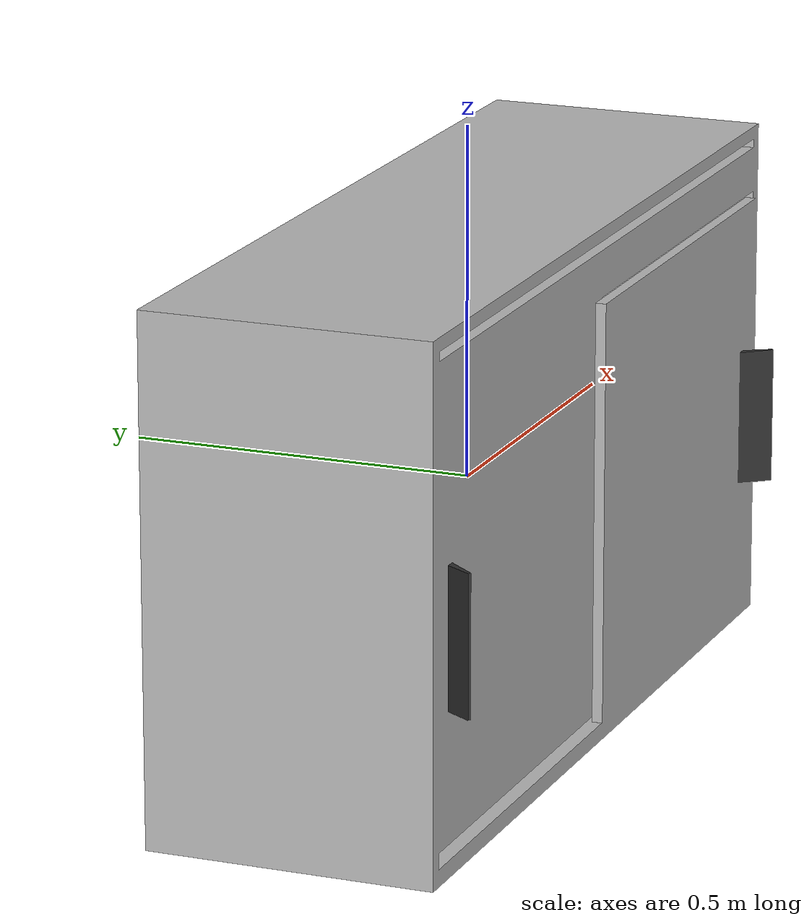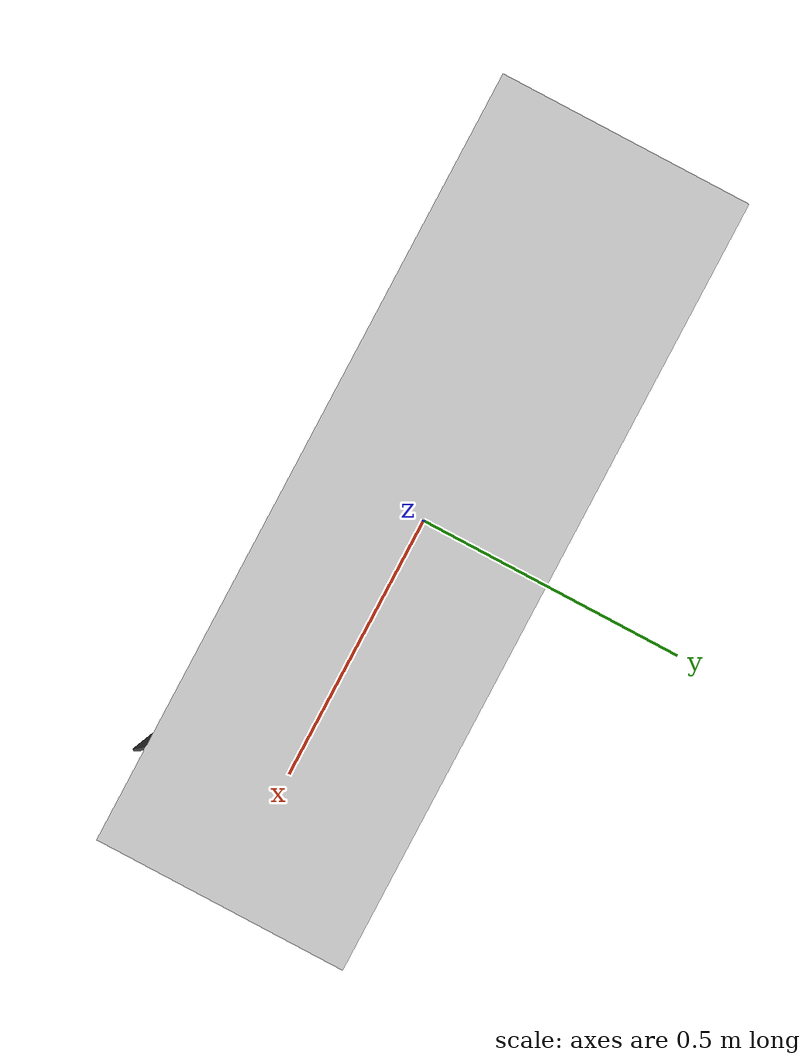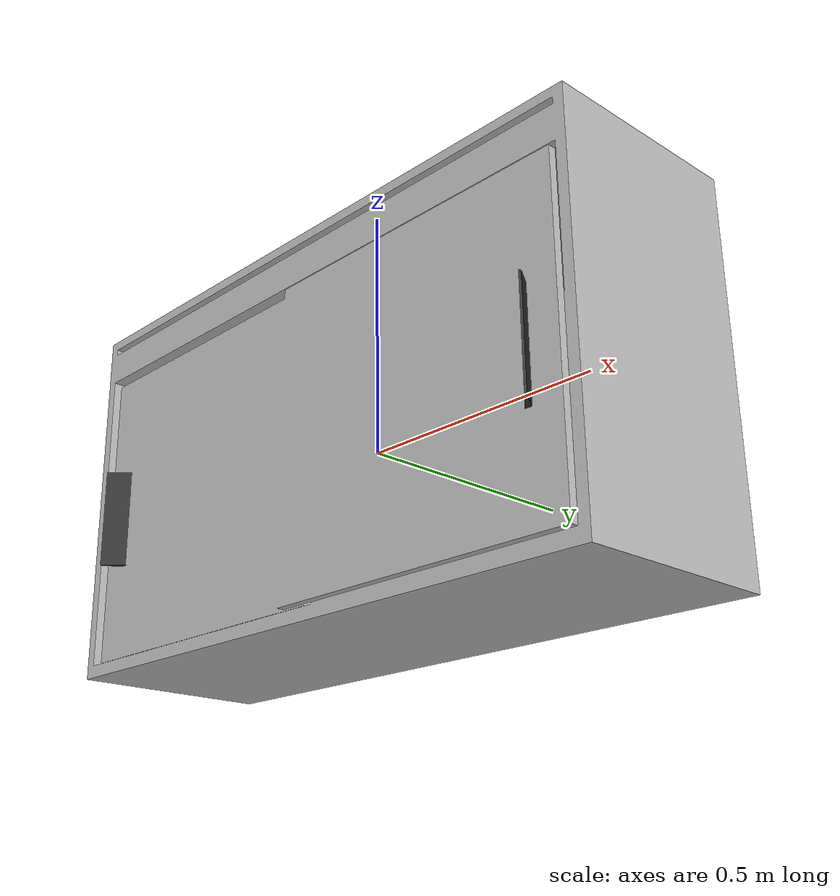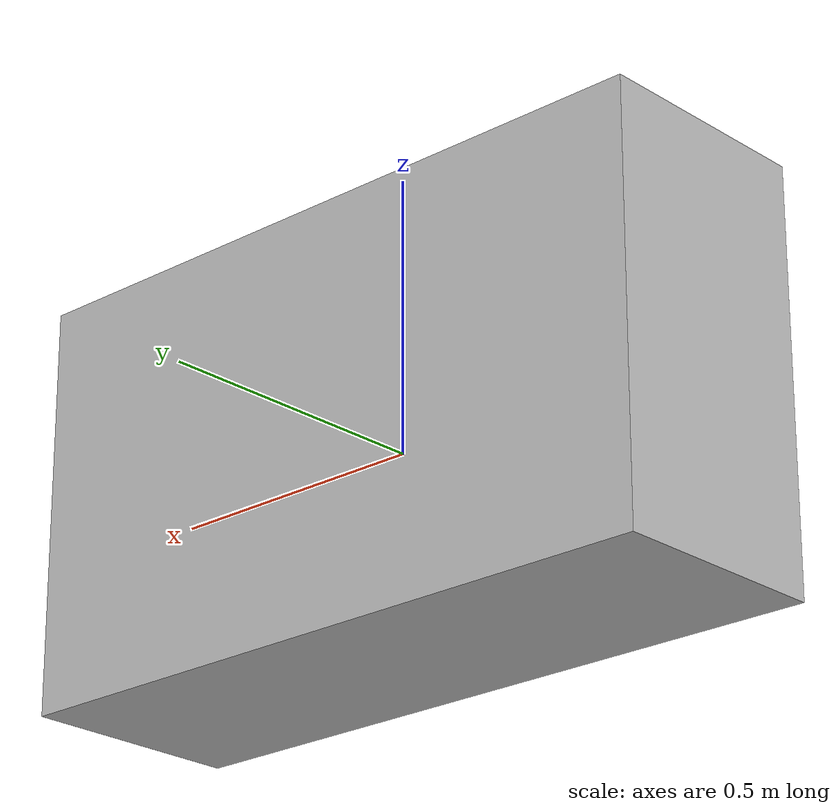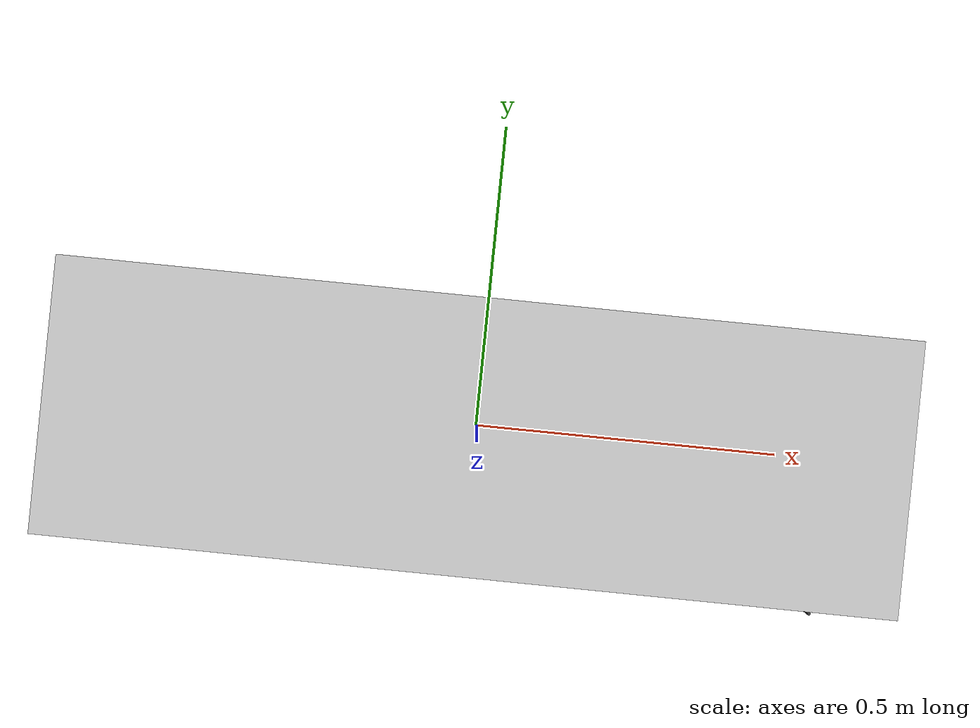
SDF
<?xml version='1.0'?>
<sdf version='1.5'>
    <model name="413_commode">
        <pose>0 0 0 0 0 0</pose>
        <static>false</static>
        <link name='model_body'>
            <visual name="visual">
                <geometry>
                    <mesh>
                        <uri>model://rs_gazebo/meshes/ss_hq4/413_commode/413_commode_visual.dae</uri>
                        <scale>1 1 1</scale>
                    </mesh>
                </geometry>
            </visual>

            <collision name="collision">
                <geometry>
                    <box>
                        <size> 1.27 0.415 0.735</size>
                    </box>
                </geometry>
            </collision>

            <inertial>
                <pose> 0 0 0 0 0 0</pose>
                <inertia>
                    <ixx>0.8905625</ixx>
                    <ixy>0</ixy>
                    <ixz>0</ixz>
                    <iyy>2.69140625</iyy>
                    <iyz>0</iyz>
                    <izz>2.23140625</izz>
                </inertia>
                <mass>15.0</mass>
            </inertial>
        </link>
    </model>
</sdf>
